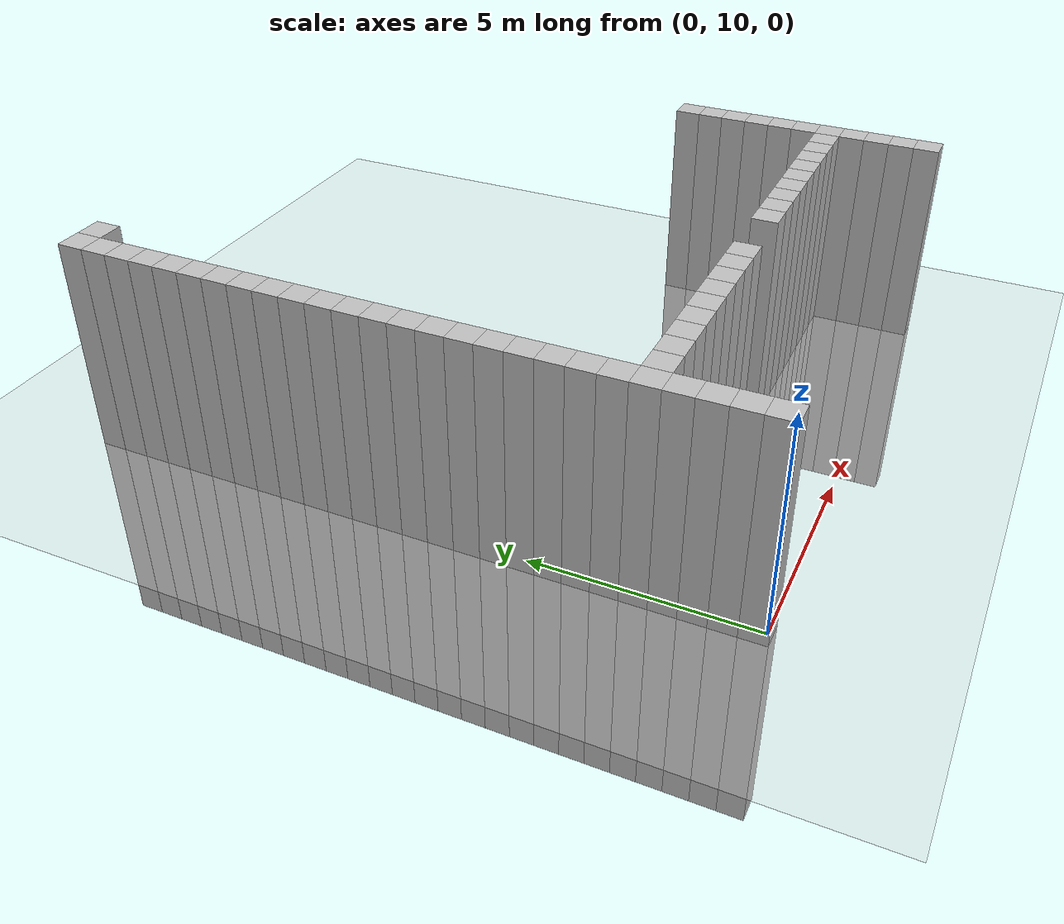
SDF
<sdf version="1.6">
 <world name="default">
  <model name="ground_plane">
   <static>1</static>
   <link name="link">
    <collision name="collision">
     <geometry><plane><normal>0 0 1</normal><size>100 100</size></plane></geometry>
     <surface><friction><ode><mu>100</mu><mu2>50</mu2></ode></friction></surface>
    </collision>
    <visual name="visual">
     <cast_shadows>0</cast_shadows>
     <geometry><plane><normal>0 0 1</normal><size>100 100</size></plane></geometry>
     <material>
      <script><uri>file://media/materials/scripts/gazebo.material</uri><name>Gazebo/Grey</name></script>
     </material>
    </visual>
   </link>
  </model>
  <model name="unit_cylinder_17">
   <static>1</static>
   <pose>0 10.2 0 0 -0 0</pose>
   <link name="link">
    <inertial>
     <mass>1</mass>
     <inertia><ixx>0.145833</ixx><ixy>0</ixy><ixz>0</ixz><iyy>0.145833</iyy><iyz>0</iyz><izz>0.125</izz></inertia>
    </inertial>
    <collision name="collision"><geometry><box><size>0.6 0.6 10</size></box></geometry></collision>
    <visual name="visual">
     <geometry><box><size>0.6 0.6 10</size></box></geometry>
     <material><ambient>0.753 0.753 0.753 1</ambient><diffuse>0.753 0.753 0.753 1</diffuse></material>
     <material>
      <script><name>Gazebo/Grey</name><uri>file://media/materials/scripts/gazebo.material</uri></script>
     </material>
    </visual>
   </link>
  </model>
  <model name="unit_cylinder_18">
   <static>1</static>
   <pose>0 10.8 0 0 -0 0</pose>
   <link name="link">
    <inertial>
     <mass>1</mass>
     <inertia><ixx>0.145833</ixx><ixy>0</ixy><ixz>0</ixz><iyy>0.145833</iyy><iyz>0</iyz><izz>0.125</izz></inertia>
    </inertial>
    <collision name="collision"><geometry><box><size>0.6 0.6 10</size></box></geometry></collision>
    <visual name="visual">
     <geometry><box><size>0.6 0.6 10</size></box></geometry>
     <material><ambient>0.753 0.753 0.753 1</ambient><diffuse>0.753 0.753 0.753 1</diffuse></material>
     <material>
      <script><name>Gazebo/Grey</name><uri>file://media/materials/scripts/gazebo.material</uri></script>
     </material>
    </visual>
   </link>
  </model>
  <model name="unit_cylinder_19">
   <static>1</static>
   <pose>0 11.4 0 0 -0 0</pose>
   <link name="link">
    <inertial>
     <mass>1</mass>
     <inertia><ixx>0.145833</ixx><ixy>0</ixy><ixz>0</ixz><iyy>0.145833</iyy><iyz>0</iyz><izz>0.125</izz></inertia>
    </inertial>
    <collision name="collision"><geometry><box><size>0.6 0.6 10</size></box></geometry></collision>
    <visual name="visual">
     <geometry><box><size>0.6 0.6 10</size></box></geometry>
     <material><ambient>0.753 0.753 0.753 1</ambient><diffuse>0.753 0.753 0.753 1</diffuse></material>
     <material>
      <script><name>Gazebo/Grey</name><uri>file://media/materials/scripts/gazebo.material</uri></script>
     </material>
    </visual>
   </link>
  </model>
  <model name="unit_cylinder_20">
   <static>1</static>
   <pose>0 12 0 0 -0 0</pose>
   <link name="link">
    <inertial>
     <mass>1</mass>
     <inertia><ixx>0.145833</ixx><ixy>0</ixy><ixz>0</ixz><iyy>0.145833</iyy><iyz>0</iyz><izz>0.125</izz></inertia>
    </inertial>
    <collision name="collision"><geometry><box><size>0.6 0.6 10</size></box></geometry></collision>
    <visual name="visual">
     <geometry><box><size>0.6 0.6 10</size></box></geometry>
     <material><ambient>0.753 0.753 0.753 1</ambient><diffuse>0.753 0.753 0.753 1</diffuse></material>
     <material>
      <script><name>Gazebo/Grey</name><uri>file://media/materials/scripts/gazebo.material</uri></script>
     </material>
    </visual>
   </link>
  </model>
  <model name="unit_cylinder_21">
   <static>1</static>
   <pose>0 12.6 0 0 -0 0</pose>
   <link name="link">
    <inertial>
     <mass>1</mass>
     <inertia><ixx>0.145833</ixx><ixy>0</ixy><ixz>0</ixz><iyy>0.145833</iyy><iyz>0</iyz><izz>0.125</izz></inertia>
    </inertial>
    <collision name="collision"><geometry><box><size>0.6 0.6 10</size></box></geometry></collision>
    <visual name="visual">
     <geometry><box><size>0.6 0.6 10</size></box></geometry>
     <material><ambient>0.753 0.753 0.753 1</ambient><diffuse>0.753 0.753 0.753 1</diffuse></material>
     <material>
      <script><name>Gazebo/Grey</name><uri>file://media/materials/scripts/gazebo.material</uri></script>
     </material>
    </visual>
   </link>
  </model>
  <model name="unit_cylinder_22">
   <static>1</static>
   <pose>0 13.2 0 0 -0 0</pose>
   <link name="link">
    <inertial>
     <mass>1</mass>
     <inertia><ixx>0.145833</ixx><ixy>0</ixy><ixz>0</ixz><iyy>0.145833</iyy><iyz>0</iyz><izz>0.125</izz></inertia>
    </inertial>
    <collision name="collision"><geometry><box><size>0.6 0.6 10</size></box></geometry></collision>
    <visual name="visual">
     <geometry><box><size>0.6 0.6 10</size></box></geometry>
     <material><ambient>0.753 0.753 0.753 1</ambient><diffuse>0.753 0.753 0.753 1</diffuse></material>
     <material>
      <script><name>Gazebo/Grey</name><uri>file://media/materials/scripts/gazebo.material</uri></script>
     </material>
    </visual>
   </link>
  </model>
  <model name="unit_cylinder_23">
   <static>1</static>
   <pose>0 13.8 0 0 -0 0</pose>
   <link name="link">
    <inertial>
     <mass>1</mass>
     <inertia><ixx>0.145833</ixx><ixy>0</ixy><ixz>0</ixz><iyy>0.145833</iyy><iyz>0</iyz><izz>0.125</izz></inertia>
    </inertial>
    <collision name="collision"><geometry><box><size>0.6 0.6 10</size></box></geometry></collision>
    <visual name="visual">
     <geometry><box><size>0.6 0.6 10</size></box></geometry>
     <material><ambient>0.753 0.753 0.753 1</ambient><diffuse>0.753 0.753 0.753 1</diffuse></material>
     <material>
      <script><name>Gazebo/Grey</name><uri>file://media/materials/scripts/gazebo.material</uri></script>
     </material>
    </visual>
   </link>
  </model>
  <model name="unit_cylinder_24">
   <static>1</static>
   <pose>0 14.4 0 0 -0 0</pose>
   <link name="link">
    <inertial>
     <mass>1</mass>
     <inertia><ixx>0.145833</ixx><ixy>0</ixy><ixz>0</ixz><iyy>0.145833</iyy><iyz>0</iyz><izz>0.125</izz></inertia>
    </inertial>
    <collision name="collision"><geometry><box><size>0.6 0.6 10</size></box></geometry></collision>
    <visual name="visual">
     <geometry><box><size>0.6 0.6 10</size></box></geometry>
     <material><ambient>0.753 0.753 0.753 1</ambient><diffuse>0.753 0.753 0.753 1</diffuse></material>
     <material>
      <script><name>Gazebo/Grey</name><uri>file://media/materials/scripts/gazebo.material</uri></script>
     </material>
    </visual>
   </link>
  </model>
  <model name="unit_cylinder_25">
   <static>1</static>
   <pose>0 15 0 0 -0 0</pose>
   <link name="link">
    <inertial>
     <mass>1</mass>
     <inertia><ixx>0.145833</ixx><ixy>0</ixy><ixz>0</ixz><iyy>0.145833</iyy><iyz>0</iyz><izz>0.125</izz></inertia>
    </inertial>
    <collision name="collision"><geometry><box><size>0.6 0.6 10</size></box></geometry></collision>
    <visual name="visual">
     <geometry><box><size>0.6 0.6 10</size></box></geometry>
     <material><ambient>0.753 0.753 0.753 1</ambient><diffuse>0.753 0.753 0.753 1</diffuse></material>
     <material>
      <script><name>Gazebo/Grey</name><uri>file://media/materials/scripts/gazebo.material</uri></script>
     </material>
    </visual>
   </link>
  </model>
  <model name="unit_cylinder_26">
   <static>1</static>
   <pose>0 15.6 0 0 -0 0</pose>
   <link name="link">
    <inertial>
     <mass>1</mass>
     <inertia><ixx>0.145833</ixx><ixy>0</ixy><ixz>0</ixz><iyy>0.145833</iyy><iyz>0</iyz><izz>0.125</izz></inertia>
    </inertial>
    <collision name="collision"><geometry><box><size>0.6 0.6 10</size></box></geometry></collision>
    <visual name="visual">
     <geometry><box><size>0.6 0.6 10</size></box></geometry>
     <material><ambient>0.753 0.753 0.753 1</ambient><diffuse>0.753 0.753 0.753 1</diffuse></material>
     <material>
      <script><name>Gazebo/Grey</name><uri>file://media/materials/scripts/gazebo.material</uri></script>
     </material>
    </visual>
   </link>
  </model>
  <model name="unit_cylinder_27">
   <static>1</static>
   <pose>0 16.2 0 0 -0 0</pose>
   <link name="link">
    <inertial>
     <mass>1</mass>
     <inertia><ixx>0.145833</ixx><ixy>0</ixy><ixz>0</ixz><iyy>0.145833</iyy><iyz>0</iyz><izz>0.125</izz></inertia>
    </inertial>
    <collision name="collision"><geometry><box><size>0.6 0.6 10</size></box></geometry></collision>
    <visual name="visual">
     <geometry><box><size>0.6 0.6 10</size></box></geometry>
     <material><ambient>0.753 0.753 0.753 1</ambient><diffuse>0.753 0.753 0.753 1</diffuse></material>
     <material>
      <script><name>Gazebo/Grey</name><uri>file://media/materials/scripts/gazebo.material</uri></script>
     </material>
    </visual>
   </link>
  </model>
  <model name="unit_cylinder_28">
   <static>1</static>
   <pose>0 16.8 0 0 -0 0</pose>
   <link name="link">
    <inertial>
     <mass>1</mass>
     <inertia><ixx>0.145833</ixx><ixy>0</ixy><ixz>0</ixz><iyy>0.145833</iyy><iyz>0</iyz><izz>0.125</izz></inertia>
    </inertial>
    <collision name="collision"><geometry><box><size>0.6 0.6 10</size></box></geometry></collision>
    <visual name="visual">
     <geometry><box><size>0.6 0.6 10</size></box></geometry>
     <material><ambient>0.753 0.753 0.753 1</ambient><diffuse>0.753 0.753 0.753 1</diffuse></material>
     <material>
      <script><name>Gazebo/Grey</name><uri>file://media/materials/scripts/gazebo.material</uri></script>
     </material>
    </visual>
   </link>
  </model>
  <model name="unit_cylinder_29">
   <static>1</static>
   <pose>0 17.4 0 0 -0 0</pose>
   <link name="link">
    <inertial>
     <mass>1</mass>
     <inertia><ixx>0.145833</ixx><ixy>0</ixy><ixz>0</ixz><iyy>0.145833</iyy><iyz>0</iyz><izz>0.125</izz></inertia>
    </inertial>
    <collision name="collision"><geometry><box><size>0.6 0.6 10</size></box></geometry></collision>
    <visual name="visual">
     <geometry><box><size>0.6 0.6 10</size></box></geometry>
     <material><ambient>0.753 0.753 0.753 1</ambient><diffuse>0.753 0.753 0.753 1</diffuse></material>
     <material>
      <script><name>Gazebo/Grey</name><uri>file://media/materials/scripts/gazebo.material</uri></script>
     </material>
    </visual>
   </link>
  </model>
  <model name="unit_cylinder_30">
   <static>1</static>
   <pose>0 18 0 0 -0 0</pose>
   <link name="link">
    <inertial>
     <mass>1</mass>
     <inertia><ixx>0.145833</ixx><ixy>0</ixy><ixz>0</ixz><iyy>0.145833</iyy><iyz>0</iyz><izz>0.125</izz></inertia>
    </inertial>
    <collision name="collision"><geometry><box><size>0.6 0.6 10</size></box></geometry></collision>
    <visual name="visual">
     <geometry><box><size>0.6 0.6 10</size></box></geometry>
     <material><ambient>0.753 0.753 0.753 1</ambient><diffuse>0.753 0.753 0.753 1</diffuse></material>
     <material>
      <script><name>Gazebo/Grey</name><uri>file://media/materials/scripts/gazebo.material</uri></script>
     </material>
    </visual>
   </link>
  </model>
  <model name="unit_cylinder_31">
   <static>1</static>
   <pose>0 18.6 0 0 -0 0</pose>
   <link name="link">
    <inertial>
     <mass>1</mass>
     <inertia><ixx>0.145833</ixx><ixy>0</ixy><ixz>0</ixz><iyy>0.145833</iyy><iyz>0</iyz><izz>0.125</izz></inertia>
    </inertial>
    <collision name="collision"><geometry><box><size>0.6 0.6 10</size></box></geometry></collision>
    <visual name="visual">
     <geometry><box><size>0.6 0.6 10</size></box></geometry>
     <material><ambient>0.753 0.753 0.753 1</ambient><diffuse>0.753 0.753 0.753 1</diffuse></material>
     <material>
      <script><name>Gazebo/Grey</name><uri>file://media/materials/scripts/gazebo.material</uri></script>
     </material>
    </visual>
   </link>
  </model>
  <model name="unit_cylinder_32">
   <static>1</static>
   <pose>0 19.2 0 0 -0 0</pose>
   <link name="link">
    <inertial>
     <mass>1</mass>
     <inertia><ixx>0.145833</ixx><ixy>0</ixy><ixz>0</ixz><iyy>0.145833</iyy><iyz>0</iyz><izz>0.125</izz></inertia>
    </inertial>
    <collision name="collision"><geometry><box><size>0.6 0.6 10</size></box></geometry></collision>
    <visual name="visual">
     <geometry><box><size>0.6 0.6 10</size></box></geometry>
     <material><ambient>0.753 0.753 0.753 1</ambient><diffuse>0.753 0.753 0.753 1</diffuse></material>
     <material>
      <script><name>Gazebo/Grey</name><uri>file://media/materials/scripts/gazebo.material</uri></script>
     </material>
    </visual>
   </link>
  </model>
  <model name="unit_cylinder_33">
   <static>1</static>
   <pose>0 19.8 0 0 -0 0</pose>
   <link name="link">
    <inertial>
     <mass>1</mass>
     <inertia><ixx>0.145833</ixx><ixy>0</ixy><ixz>0</ixz><iyy>0.145833</iyy><iyz>0</iyz><izz>0.125</izz></inertia>
    </inertial>
    <collision name="collision"><geometry><box><size>0.6 0.6 10</size></box></geometry></collision>
    <visual name="visual">
     <geometry><box><size>0.6 0.6 10</size></box></geometry>
     <material><ambient>0.753 0.753 0.753 1</ambient><diffuse>0.753 0.753 0.753 1</diffuse></material>
     <material>
      <script><name>Gazebo/Grey</name><uri>file://media/materials/scripts/gazebo.material</uri></script>
     </material>
    </visual>
   </link>
  </model>
  <model name="unit_cylinder_34">
   <static>1</static>
   <pose>0 20.4 0 0 -0 0</pose>
   <link name="link">
    <inertial>
     <mass>1</mass>
     <inertia><ixx>0.145833</ixx><ixy>0</ixy><ixz>0</ixz><iyy>0.145833</iyy><iyz>0</iyz><izz>0.125</izz></inertia>
    </inertial>
    <collision name="collision"><geometry><box><size>0.6 0.6 10</size></box></geometry></collision>
    <visual name="visual">
     <geometry><box><size>0.6 0.6 10</size></box></geometry>
     <material><ambient>0.753 0.753 0.753 1</ambient><diffuse>0.753 0.753 0.753 1</diffuse></material>
     <material>
      <script><name>Gazebo/Grey</name><uri>file://media/materials/scripts/gazebo.material</uri></script>
     </material>
    </visual>
   </link>
  </model>
  <model name="unit_cylinder_35">
   <static>1</static>
   <pose>0 21 0 0 -0 0</pose>
   <link name="link">
    <inertial>
     <mass>1</mass>
     <inertia><ixx>0.145833</ixx><ixy>0</ixy><ixz>0</ixz><iyy>0.145833</iyy><iyz>0</iyz><izz>0.125</izz></inertia>
    </inertial>
    <collision name="collision"><geometry><box><size>0.6 0.6 10</size></box></geometry></collision>
    <visual name="visual">
     <geometry><box><size>0.6 0.6 10</size></box></geometry>
     <material><ambient>0.753 0.753 0.753 1</ambient><diffuse>0.753 0.753 0.753 1</diffuse></material>
     <material>
      <script><name>Gazebo/Grey</name><uri>file://media/materials/scripts/gazebo.material</uri></script>
     </material>
    </visual>
   </link>
  </model>
  <model name="unit_cylinder_36">
   <static>1</static>
   <pose>0 21.6 0 0 -0 0</pose>
   <link name="link">
    <inertial>
     <mass>1</mass>
     <inertia><ixx>0.145833</ixx><ixy>0</ixy><ixz>0</ixz><iyy>0.145833</iyy><iyz>0</iyz><izz>0.125</izz></inertia>
    </inertial>
    <collision name="collision"><geometry><box><size>0.6 0.6 10</size></box></geometry></collision>
    <visual name="visual">
     <geometry><box><size>0.6 0.6 10</size></box></geometry>
     <material><ambient>0.753 0.753 0.753 1</ambient><diffuse>0.753 0.753 0.753 1</diffuse></material>
     <material>
      <script><name>Gazebo/Grey</name><uri>file://media/materials/scripts/gazebo.material</uri></script>
     </material>
    </visual>
   </link>
  </model>
  <model name="unit_cylinder_37">
   <static>1</static>
   <pose>0 22.2 0 0 -0 0</pose>
   <link name="link">
    <inertial>
     <mass>1</mass>
     <inertia><ixx>0.145833</ixx><ixy>0</ixy><ixz>0</ixz><iyy>0.145833</iyy><iyz>0</iyz><izz>0.125</izz></inertia>
    </inertial>
    <collision name="collision"><geometry><box><size>0.6 0.6 10</size></box></geometry></collision>
    <visual name="visual">
     <geometry><box><size>0.6 0.6 10</size></box></geometry>
     <material><ambient>0.753 0.753 0.753 1</ambient><diffuse>0.753 0.753 0.753 1</diffuse></material>
     <material>
      <script><name>Gazebo/Grey</name><uri>file://media/materials/scripts/gazebo.material</uri></script>
     </material>
    </visual>
   </link>
  </model>
  <model name="unit_cylinder_38">
   <static>1</static>
   <pose>0 22.8 0 0 -0 0</pose>
   <link name="link">
    <inertial>
     <mass>1</mass>
     <inertia><ixx>0.145833</ixx><ixy>0</ixy><ixz>0</ixz><iyy>0.145833</iyy><iyz>0</iyz><izz>0.125</izz></inertia>
    </inertial>
    <collision name="collision"><geometry><box><size>0.6 0.6 10</size></box></geometry></collision>
    <visual name="visual">
     <geometry><box><size>0.6 0.6 10</size></box></geometry>
     <material><ambient>0.753 0.753 0.753 1</ambient><diffuse>0.753 0.753 0.753 1</diffuse></material>
     <material>
      <script><name>Gazebo/Grey</name><uri>file://media/materials/scripts/gazebo.material</uri></script>
     </material>
    </visual>
   </link>
  </model>
  <model name="unit_cylinder_39">
   <static>1</static>
   <pose>0 23.4 0 0 -0 0</pose>
   <link name="link">
    <inertial>
     <mass>1</mass>
     <inertia><ixx>0.145833</ixx><ixy>0</ixy><ixz>0</ixz><iyy>0.145833</iyy><iyz>0</iyz><izz>0.125</izz></inertia>
    </inertial>
    <collision name="collision"><geometry><box><size>0.6 0.6 10</size></box></geometry></collision>
    <visual name="visual">
     <geometry><box><size>0.6 0.6 10</size></box></geometry>
     <material><ambient>0.753 0.753 0.753 1</ambient><diffuse>0.753 0.753 0.753 1</diffuse></material>
     <material>
      <script><name>Gazebo/Grey</name><uri>file://media/materials/scripts/gazebo.material</uri></script>
     </material>
    </visual>
   </link>
  </model>
  <model name="unit_cylinder_40">
   <static>1</static>
   <pose>0 24 0 0 -0 0</pose>
   <link name="link">
    <inertial>
     <mass>1</mass>
     <inertia><ixx>0.145833</ixx><ixy>0</ixy><ixz>0</ixz><iyy>0.145833</iyy><iyz>0</iyz><izz>0.125</izz></inertia>
    </inertial>
    <collision name="collision"><geometry><box><size>0.6 0.6 10</size></box></geometry></collision>
    <visual name="visual">
     <geometry><box><size>0.6 0.6 10</size></box></geometry>
     <material><ambient>0.753 0.753 0.753 1</ambient><diffuse>0.753 0.753 0.753 1</diffuse></material>
     <material>
      <script><name>Gazebo/Grey</name><uri>file://media/materials/scripts/gazebo.material</uri></script>
     </material>
    </visual>
   </link>
  </model>
  <model name="unit_cylinder_41">
   <static>1</static>
   <pose>0 24.6 0 0 -0 0</pose>
   <link name="link">
    <inertial>
     <mass>1</mass>
     <inertia><ixx>0.145833</ixx><ixy>0</ixy><ixz>0</ixz><iyy>0.145833</iyy><iyz>0</iyz><izz>0.125</izz></inertia>
    </inertial>
    <collision name="collision"><geometry><box><size>0.6 0.6 10</size></box></geometry></collision>
    <visual name="visual">
     <geometry><box><size>0.6 0.6 10</size></box></geometry>
     <material><ambient>0.753 0.753 0.753 1</ambient><diffuse>0.753 0.753 0.753 1</diffuse></material>
     <material>
      <script><name>Gazebo/Grey</name><uri>file://media/materials/scripts/gazebo.material</uri></script>
     </material>
    </visual>
   </link>
  </model>
  <model name="unit_cylinder_42">
   <static>1</static>
   <pose>0 25.2 0 0 -0 0</pose>
   <link name="link">
    <inertial>
     <mass>1</mass>
     <inertia><ixx>0.145833</ixx><ixy>0</ixy><ixz>0</ixz><iyy>0.145833</iyy><iyz>0</iyz><izz>0.125</izz></inertia>
    </inertial>
    <collision name="collision"><geometry><box><size>0.6 0.6 10</size></box></geometry></collision>
    <visual name="visual">
     <geometry><box><size>0.6 0.6 10</size></box></geometry>
     <material><ambient>0.753 0.753 0.753 1</ambient><diffuse>0.753 0.753 0.753 1</diffuse></material>
     <material>
      <script><name>Gazebo/Grey</name><uri>file://media/materials/scripts/gazebo.material</uri></script>
     </material>
    </visual>
   </link>
  </model>
  <model name="unit_cylinder_44">
   <static>1</static>
   <pose>0.6 12.6 0 0 -0 0</pose>
   <link name="link">
    <inertial>
     <mass>1</mass>
     <inertia><ixx>0.145833</ixx><ixy>0</ixy><ixz>0</ixz><iyy>0.145833</iyy><iyz>0</iyz><izz>0.125</izz></inertia>
    </inertial>
    <collision name="collision"><geometry><box><size>0.6 0.6 10</size></box></geometry></collision>
    <visual name="visual">
     <geometry><box><size>0.6 0.6 10</size></box></geometry>
     <material><ambient>0.753 0.753 0.753 1</ambient><diffuse>0.753 0.753 0.753 1</diffuse></material>
     <material>
      <script><name>Gazebo/Grey</name><uri>file://media/materials/scripts/gazebo.material</uri></script>
     </material>
    </visual>
   </link>
  </model>
  <model name="unit_cylinder_45">
   <static>1</static>
   <pose>0.6 25.2 0 0 -0 0</pose>
   <link name="link">
    <inertial>
     <mass>1</mass>
     <inertia><ixx>0.145833</ixx><ixy>0</ixy><ixz>0</ixz><iyy>0.145833</iyy><iyz>0</iyz><izz>0.125</izz></inertia>
    </inertial>
    <collision name="collision"><geometry><box><size>0.6 0.6 10</size></box></geometry></collision>
    <visual name="visual">
     <geometry><box><size>0.6 0.6 10</size></box></geometry>
     <material><ambient>0.753 0.753 0.753 1</ambient><diffuse>0.753 0.753 0.753 1</diffuse></material>
     <material>
      <script><name>Gazebo/Grey</name><uri>file://media/materials/scripts/gazebo.material</uri></script>
     </material>
    </visual>
   </link>
  </model>
  <model name="unit_cylinder_47">
   <static>1</static>
   <pose>1.2 12.6 0 0 -0 0</pose>
   <link name="link">
    <inertial>
     <mass>1</mass>
     <inertia><ixx>0.145833</ixx><ixy>0</ixy><ixz>0</ixz><iyy>0.145833</iyy><iyz>0</iyz><izz>0.125</izz></inertia>
    </inertial>
    <collision name="collision"><geometry><box><size>0.6 0.6 10</size></box></geometry></collision>
    <visual name="visual">
     <geometry><box><size>0.6 0.6 10</size></box></geometry>
     <material><ambient>0.753 0.753 0.753 1</ambient><diffuse>0.753 0.753 0.753 1</diffuse></material>
     <material>
      <script><name>Gazebo/Grey</name><uri>file://media/materials/scripts/gazebo.material</uri></script>
     </material>
    </visual>
   </link>
  </model>
  <model name="unit_cylinder_50">
   <static>1</static>
   <pose>1.8 12.6 0 0 -0 0</pose>
   <link name="link">
    <inertial>
     <mass>1</mass>
     <inertia><ixx>0.145833</ixx><ixy>0</ixy><ixz>0</ixz><iyy>0.145833</iyy><iyz>0</iyz><izz>0.125</izz></inertia>
    </inertial>
    <collision name="collision"><geometry><box><size>0.6 0.6 10</size></box></geometry></collision>
    <visual name="visual">
     <geometry><box><size>0.6 0.6 10</size></box></geometry>
     <material><ambient>0.753 0.753 0.753 1</ambient><diffuse>0.753 0.753 0.753 1</diffuse></material>
     <material>
      <script><name>Gazebo/Grey</name><uri>file://media/materials/scripts/gazebo.material</uri></script>
     </material>
    </visual>
   </link>
  </model>
  <model name="unit_cylinder_53">
   <static>1</static>
   <pose>2.4 12.6 0 0 -0 0</pose>
   <link name="link">
    <inertial>
     <mass>1</mass>
     <inertia><ixx>0.145833</ixx><ixy>0</ixy><ixz>0</ixz><iyy>0.145833</iyy><iyz>0</iyz><izz>0.125</izz></inertia>
    </inertial>
    <collision name="collision"><geometry><box><size>0.6 0.6 10</size></box></geometry></collision>
    <visual name="visual">
     <geometry><box><size>0.6 0.6 10</size></box></geometry>
     <material><ambient>0.753 0.753 0.753 1</ambient><diffuse>0.753 0.753 0.753 1</diffuse></material>
     <material>
      <script><name>Gazebo/Grey</name><uri>file://media/materials/scripts/gazebo.material</uri></script>
     </material>
    </visual>
   </link>
  </model>
  <model name="unit_cylinder_56">
   <static>1</static>
   <pose>3 12.6 0 0 -0 0</pose>
   <link name="link">
    <inertial>
     <mass>1</mass>
     <inertia><ixx>0.145833</ixx><ixy>0</ixy><ixz>0</ixz><iyy>0.145833</iyy><iyz>0</iyz><izz>0.125</izz></inertia>
    </inertial>
    <collision name="collision"><geometry><box><size>0.6 0.6 10</size></box></geometry></collision>
    <visual name="visual">
     <geometry><box><size>0.6 0.6 10</size></box></geometry>
     <material><ambient>0.753 0.753 0.753 1</ambient><diffuse>0.753 0.753 0.753 1</diffuse></material>
     <material>
      <script><name>Gazebo/Grey</name><uri>file://media/materials/scripts/gazebo.material</uri></script>
     </material>
    </visual>
   </link>
  </model>
  <model name="unit_cylinder_59">
   <static>1</static>
   <pose>3.6 12.6 0 0 -0 0</pose>
   <link name="link">
    <inertial>
     <mass>1</mass>
     <inertia><ixx>0.145833</ixx><ixy>0</ixy><ixz>0</ixz><iyy>0.145833</iyy><iyz>0</iyz><izz>0.125</izz></inertia>
    </inertial>
    <collision name="collision"><geometry><box><size>0.6 0.6 10</size></box></geometry></collision>
    <visual name="visual">
     <geometry><box><size>0.6 0.6 10</size></box></geometry>
     <material><ambient>0.753 0.753 0.753 1</ambient><diffuse>0.753 0.753 0.753 1</diffuse></material>
     <material>
      <script><name>Gazebo/Grey</name><uri>file://media/materials/scripts/gazebo.material</uri></script>
     </material>
    </visual>
   </link>
  </model>
  <model name="unit_cylinder_62">
   <static>1</static>
   <pose>4.2 12.6 0 0 -0 0</pose>
   <link name="link">
    <inertial>
     <mass>1</mass>
     <inertia><ixx>0.145833</ixx><ixy>0</ixy><ixz>0</ixz><iyy>0.145833</iyy><iyz>0</iyz><izz>0.125</izz></inertia>
    </inertial>
    <collision name="collision"><geometry><box><size>0.6 0.6 10</size></box></geometry></collision>
    <visual name="visual">
     <geometry><box><size>0.6 0.6 10</size></box></geometry>
     <material><ambient>0.753 0.753 0.753 1</ambient><diffuse>0.753 0.753 0.753 1</diffuse></material>
     <material>
      <script><name>Gazebo/Grey</name><uri>file://media/materials/scripts/gazebo.material</uri></script>
     </material>
    </visual>
   </link>
  </model>
  <model name="unit_cylinder_65">
   <static>1</static>
   <pose>4.8 12.6 0 0 -0 0</pose>
   <link name="link">
    <inertial>
     <mass>1</mass>
     <inertia><ixx>0.145833</ixx><ixy>0</ixy><ixz>0</ixz><iyy>0.145833</iyy><iyz>0</iyz><izz>0.125</izz></inertia>
    </inertial>
    <collision name="collision"><geometry><box><size>0.6 0.6 10</size></box></geometry></collision>
    <visual name="visual">
     <geometry><box><size>0.6 0.6 10</size></box></geometry>
     <material><ambient>0.753 0.753 0.753 1</ambient><diffuse>0.753 0.753 0.753 1</diffuse></material>
     <material>
      <script><name>Gazebo/Grey</name><uri>file://media/materials/scripts/gazebo.material</uri></script>
     </material>
    </visual>
   </link>
  </model>
  <model name="unit_cylinder_68">
   <static>1</static>
   <pose>5.4 12.6 0 0 -0 0</pose>
   <link name="link">
    <inertial>
     <mass>1</mass>
     <inertia><ixx>0.145833</ixx><ixy>0</ixy><ixz>0</ixz><iyy>0.145833</iyy><iyz>0</iyz><izz>0.125</izz></inertia>
    </inertial>
    <collision name="collision"><geometry><box><size>0.6 0.6 10</size></box></geometry></collision>
    <visual name="visual">
     <geometry><box><size>0.6 0.6 10</size></box></geometry>
     <material><ambient>0.753 0.753 0.753 1</ambient><diffuse>0.753 0.753 0.753 1</diffuse></material>
     <material>
      <script><name>Gazebo/Grey</name><uri>file://media/materials/scripts/gazebo.material</uri></script>
     </material>
    </visual>
   </link>
  </model>
  <model name="unit_cylinder_77">
   <static>1</static>
   <pose>7.2 12.6 0 0 -0 0</pose>
   <link name="link">
    <inertial>
     <mass>1</mass>
     <inertia><ixx>0.145833</ixx><ixy>0</ixy><ixz>0</ixz><iyy>0.145833</iyy><iyz>0</iyz><izz>0.125</izz></inertia>
    </inertial>
    <collision name="collision"><geometry><box><size>0.6 0.6 10</size></box></geometry></collision>
    <visual name="visual">
     <geometry><box><size>0.6 0.6 10</size></box></geometry>
     <material><ambient>0.753 0.753 0.753 1</ambient><diffuse>0.753 0.753 0.753 1</diffuse></material>
     <material>
      <script><name>Gazebo/Grey</name><uri>file://media/materials/scripts/gazebo.material</uri></script>
     </material>
    </visual>
   </link>
  </model>
  <model name="unit_cylinder_80">
   <static>1</static>
   <pose>7.8 12.6 0 0 -0 0</pose>
   <link name="link">
    <inertial>
     <mass>1</mass>
     <inertia><ixx>0.145833</ixx><ixy>0</ixy><ixz>0</ixz><iyy>0.145833</iyy><iyz>0</iyz><izz>0.125</izz></inertia>
    </inertial>
    <collision name="collision"><geometry><box><size>0.6 0.6 10</size></box></geometry></collision>
    <visual name="visual">
     <geometry><box><size>0.6 0.6 10</size></box></geometry>
     <material><ambient>0.753 0.753 0.753 1</ambient><diffuse>0.753 0.753 0.753 1</diffuse></material>
     <material>
      <script><name>Gazebo/Grey</name><uri>file://media/materials/scripts/gazebo.material</uri></script>
     </material>
    </visual>
   </link>
  </model>
  <model name="unit_cylinder_83">
   <static>1</static>
   <pose>8.4 12.6 0 0 -0 0</pose>
   <link name="link">
    <inertial>
     <mass>1</mass>
     <inertia><ixx>0.145833</ixx><ixy>0</ixy><ixz>0</ixz><iyy>0.145833</iyy><iyz>0</iyz><izz>0.125</izz></inertia>
    </inertial>
    <collision name="collision"><geometry><box><size>0.6 0.6 10</size></box></geometry></collision>
    <visual name="visual">
     <geometry><box><size>0.6 0.6 10</size></box></geometry>
     <material><ambient>0.753 0.753 0.753 1</ambient><diffuse>0.753 0.753 0.753 1</diffuse></material>
     <material>
      <script><name>Gazebo/Grey</name><uri>file://media/materials/scripts/gazebo.material</uri></script>
     </material>
    </visual>
   </link>
  </model>
  <model name="unit_cylinder_86">
   <static>1</static>
   <pose>9 12.6 0 0 -0 0</pose>
   <link name="link">
    <inertial>
     <mass>1</mass>
     <inertia><ixx>0.145833</ixx><ixy>0</ixy><ixz>0</ixz><iyy>0.145833</iyy><iyz>0</iyz><izz>0.125</izz></inertia>
    </inertial>
    <collision name="collision"><geometry><box><size>0.6 0.6 10</size></box></geometry></collision>
    <visual name="visual">
     <geometry><box><size>0.6 0.6 10</size></box></geometry>
     <material><ambient>0.753 0.753 0.753 1</ambient><diffuse>0.753 0.753 0.753 1</diffuse></material>
     <material>
      <script><name>Gazebo/Grey</name><uri>file://media/materials/scripts/gazebo.material</uri></script>
     </material>
    </visual>
   </link>
  </model>
  <model name="unit_cylinder_89">
   <static>1</static>
   <pose>9.6 12.6 0 0 -0 0</pose>
   <link name="link">
    <inertial>
     <mass>1</mass>
     <inertia><ixx>0.145833</ixx><ixy>0</ixy><ixz>0</ixz><iyy>0.145833</iyy><iyz>0</iyz><izz>0.125</izz></inertia>
    </inertial>
    <collision name="collision"><geometry><box><size>0.6 0.6 10</size></box></geometry></collision>
    <visual name="visual">
     <geometry><box><size>0.6 0.6 10</size></box></geometry>
     <material><ambient>0.753 0.753 0.753 1</ambient><diffuse>0.753 0.753 0.753 1</diffuse></material>
     <material>
      <script><name>Gazebo/Grey</name><uri>file://media/materials/scripts/gazebo.material</uri></script>
     </material>
    </visual>
   </link>
  </model>
  <model name="unit_cylinder_92">
   <static>1</static>
   <pose>10.2 12.6 0 0 -0 0</pose>
   <link name="link">
    <inertial>
     <mass>1</mass>
     <inertia><ixx>0.145833</ixx><ixy>0</ixy><ixz>0</ixz><iyy>0.145833</iyy><iyz>0</iyz><izz>0.125</izz></inertia>
    </inertial>
    <collision name="collision"><geometry><box><size>0.6 0.6 10</size></box></geometry></collision>
    <visual name="visual">
     <geometry><box><size>0.6 0.6 10</size></box></geometry>
     <material><ambient>0.753 0.753 0.753 1</ambient><diffuse>0.753 0.753 0.753 1</diffuse></material>
     <material>
      <script><name>Gazebo/Grey</name><uri>file://media/materials/scripts/gazebo.material</uri></script>
     </material>
    </visual>
   </link>
  </model>
  <model name="unit_cylinder_95">
   <static>1</static>
   <pose>10.8 12.6 0 0 -0 0</pose>
   <link name="link">
    <inertial>
     <mass>1</mass>
     <inertia><ixx>0.145833</ixx><ixy>0</ixy><ixz>0</ixz><iyy>0.145833</iyy><iyz>0</iyz><izz>0.125</izz></inertia>
    </inertial>
    <collision name="collision"><geometry><box><size>0.6 0.6 10</size></box></geometry></collision>
    <visual name="visual">
     <geometry><box><size>0.6 0.6 10</size></box></geometry>
     <material><ambient>0.753 0.753 0.753 1</ambient><diffuse>0.753 0.753 0.753 1</diffuse></material>
     <material>
      <script><name>Gazebo/Grey</name><uri>file://media/materials/scripts/gazebo.material</uri></script>
     </material>
    </visual>
   </link>
  </model>
  <model name="unit_cylinder_98">
   <static>1</static>
   <pose>11.4 12.6 0 0 -0 0</pose>
   <link name="link">
    <inertial>
     <mass>1</mass>
     <inertia><ixx>0.145833</ixx><ixy>0</ixy><ixz>0</ixz><iyy>0.145833</iyy><iyz>0</iyz><izz>0.125</izz></inertia>
    </inertial>
    <collision name="collision"><geometry><box><size>0.6 0.6 10</size></box></geometry></collision>
    <visual name="visual">
     <geometry><box><size>0.6 0.6 10</size></box></geometry>
     <material><ambient>0.753 0.753 0.753 1</ambient><diffuse>0.753 0.753 0.753 1</diffuse></material>
     <material>
      <script><name>Gazebo/Grey</name><uri>file://media/materials/scripts/gazebo.material</uri></script>
     </material>
    </visual>
   </link>
  </model>
  <model name="unit_cylinder_101">
   <static>1</static>
   <pose>12 12.6 0 0 -0 0</pose>
   <link name="link">
    <inertial>
     <mass>1</mass>
     <inertia><ixx>0.145833</ixx><ixy>0</ixy><ixz>0</ixz><iyy>0.145833</iyy><iyz>0</iyz><izz>0.125</izz></inertia>
    </inertial>
    <collision name="collision"><geometry><box><size>0.6 0.6 10</size></box></geometry></collision>
    <visual name="visual">
     <geometry><box><size>0.6 0.6 10</size></box></geometry>
     <material><ambient>0.753 0.753 0.753 1</ambient><diffuse>0.753 0.753 0.753 1</diffuse></material>
     <material>
      <script><name>Gazebo/Grey</name><uri>file://media/materials/scripts/gazebo.material</uri></script>
     </material>
    </visual>
   </link>
  </model>
  <model name="unit_cylinder_120">
   <static>1</static>
   <pose>12.6 10.2 0 0 -0 0</pose>
   <link name="link">
    <inertial>
     <mass>1</mass>
     <inertia><ixx>0.145833</ixx><ixy>0</ixy><ixz>0</ixz><iyy>0.145833</iyy><iyz>0</iyz><izz>0.125</izz></inertia>
    </inertial>
    <collision name="collision"><geometry><box><size>0.6 0.6 10</size></box></geometry></collision>
    <visual name="visual">
     <geometry><box><size>0.6 0.6 10</size></box></geometry>
     <material><ambient>0.753 0.753 0.753 1</ambient><diffuse>0.753 0.753 0.753 1</diffuse></material>
     <material>
      <script><name>Gazebo/Grey</name><uri>file://media/materials/scripts/gazebo.material</uri></script>
     </material>
    </visual>
   </link>
  </model>
  <model name="unit_cylinder_121">
   <static>1</static>
   <pose>12.6 10.8 0 0 -0 0</pose>
   <link name="link">
    <inertial>
     <mass>1</mass>
     <inertia><ixx>0.145833</ixx><ixy>0</ixy><ixz>0</ixz><iyy>0.145833</iyy><iyz>0</iyz><izz>0.125</izz></inertia>
    </inertial>
    <collision name="collision"><geometry><box><size>0.6 0.6 10</size></box></geometry></collision>
    <visual name="visual">
     <geometry><box><size>0.6 0.6 10</size></box></geometry>
     <material><ambient>0.753 0.753 0.753 1</ambient><diffuse>0.753 0.753 0.753 1</diffuse></material>
     <material>
      <script><name>Gazebo/Grey</name><uri>file://media/materials/scripts/gazebo.material</uri></script>
     </material>
    </visual>
   </link>
  </model>
  <model name="unit_cylinder_122">
   <static>1</static>
   <pose>12.6 11.4 0 0 -0 0</pose>
   <link name="link">
    <inertial>
     <mass>1</mass>
     <inertia><ixx>0.145833</ixx><ixy>0</ixy><ixz>0</ixz><iyy>0.145833</iyy><iyz>0</iyz><izz>0.125</izz></inertia>
    </inertial>
    <collision name="collision"><geometry><box><size>0.6 0.6 10</size></box></geometry></collision>
    <visual name="visual">
     <geometry><box><size>0.6 0.6 10</size></box></geometry>
     <material><ambient>0.753 0.753 0.753 1</ambient><diffuse>0.753 0.753 0.753 1</diffuse></material>
     <material>
      <script><name>Gazebo/Grey</name><uri>file://media/materials/scripts/gazebo.material</uri></script>
     </material>
    </visual>
   </link>
  </model>
  <model name="unit_cylinder_123">
   <static>1</static>
   <pose>12.6 12 0 0 -0 0</pose>
   <link name="link">
    <inertial>
     <mass>1</mass>
     <inertia><ixx>0.145833</ixx><ixy>0</ixy><ixz>0</ixz><iyy>0.145833</iyy><iyz>0</iyz><izz>0.125</izz></inertia>
    </inertial>
    <collision name="collision"><geometry><box><size>0.6 0.6 10</size></box></geometry></collision>
    <visual name="visual">
     <geometry><box><size>0.6 0.6 10</size></box></geometry>
     <material><ambient>0.753 0.753 0.753 1</ambient><diffuse>0.753 0.753 0.753 1</diffuse></material>
     <material>
      <script><name>Gazebo/Grey</name><uri>file://media/materials/scripts/gazebo.material</uri></script>
     </material>
    </visual>
   </link>
  </model>
  <model name="unit_cylinder_124">
   <static>1</static>
   <pose>12.6 12.6 0 0 -0 0</pose>
   <link name="link">
    <inertial>
     <mass>1</mass>
     <inertia><ixx>0.145833</ixx><ixy>0</ixy><ixz>0</ixz><iyy>0.145833</iyy><iyz>0</iyz><izz>0.125</izz></inertia>
    </inertial>
    <collision name="collision"><geometry><box><size>0.6 0.6 10</size></box></geometry></collision>
    <visual name="visual">
     <geometry><box><size>0.6 0.6 10</size></box></geometry>
     <material><ambient>0.753 0.753 0.753 1</ambient><diffuse>0.753 0.753 0.753 1</diffuse></material>
     <material>
      <script><name>Gazebo/Grey</name><uri>file://media/materials/scripts/gazebo.material</uri></script>
     </material>
    </visual>
   </link>
  </model>
  <model name="unit_cylinder_125">
   <static>1</static>
   <pose>12.6 13.2 0 0 -0 0</pose>
   <link name="link">
    <inertial>
     <mass>1</mass>
     <inertia><ixx>0.145833</ixx><ixy>0</ixy><ixz>0</ixz><iyy>0.145833</iyy><iyz>0</iyz><izz>0.125</izz></inertia>
    </inertial>
    <collision name="collision"><geometry><box><size>0.6 0.6 10</size></box></geometry></collision>
    <visual name="visual">
     <geometry><box><size>0.6 0.6 10</size></box></geometry>
     <material><ambient>0.753 0.753 0.753 1</ambient><diffuse>0.753 0.753 0.753 1</diffuse></material>
     <material>
      <script><name>Gazebo/Grey</name><uri>file://media/materials/scripts/gazebo.material</uri></script>
     </material>
    </visual>
   </link>
  </model>
  <model name="unit_cylinder_126">
   <static>1</static>
   <pose>12.6 13.8 0 0 -0 0</pose>
   <link name="link">
    <inertial>
     <mass>1</mass>
     <inertia><ixx>0.145833</ixx><ixy>0</ixy><ixz>0</ixz><iyy>0.145833</iyy><iyz>0</iyz><izz>0.125</izz></inertia>
    </inertial>
    <collision name="collision"><geometry><box><size>0.6 0.6 10</size></box></geometry></collision>
    <visual name="visual">
     <geometry><box><size>0.6 0.6 10</size></box></geometry>
     <material><ambient>0.753 0.753 0.753 1</ambient><diffuse>0.753 0.753 0.753 1</diffuse></material>
     <material>
      <script><name>Gazebo/Grey</name><uri>file://media/materials/scripts/gazebo.material</uri></script>
     </material>
    </visual>
   </link>
  </model>
  <model name="unit_cylinder_127">
   <static>1</static>
   <pose>12.6 14.4 0 0 -0 0</pose>
   <link name="link">
    <inertial>
     <mass>1</mass>
     <inertia><ixx>0.145833</ixx><ixy>0</ixy><ixz>0</ixz><iyy>0.145833</iyy><iyz>0</iyz><izz>0.125</izz></inertia>
    </inertial>
    <collision name="collision"><geometry><box><size>0.6 0.6 10</size></box></geometry></collision>
    <visual name="visual">
     <geometry><box><size>0.6 0.6 10</size></box></geometry>
     <material><ambient>0.753 0.753 0.753 1</ambient><diffuse>0.753 0.753 0.753 1</diffuse></material>
     <material>
      <script><name>Gazebo/Grey</name><uri>file://media/materials/scripts/gazebo.material</uri></script>
     </material>
    </visual>
   </link>
  </model>
  <model name="unit_cylinder_128">
   <static>1</static>
   <pose>12.6 15 0 0 -0 0</pose>
   <link name="link">
    <inertial>
     <mass>1</mass>
     <inertia><ixx>0.145833</ixx><ixy>0</ixy><ixz>0</ixz><iyy>0.145833</iyy><iyz>0</iyz><izz>0.125</izz></inertia>
    </inertial>
    <collision name="collision"><geometry><box><size>0.6 0.6 10</size></box></geometry></collision>
    <visual name="visual">
     <geometry><box><size>0.6 0.6 10</size></box></geometry>
     <material><ambient>0.753 0.753 0.753 1</ambient><diffuse>0.753 0.753 0.753 1</diffuse></material>
     <material>
      <script><name>Gazebo/Grey</name><uri>file://media/materials/scripts/gazebo.material</uri></script>
     </material>
    </visual>
   </link>
  </model>
  <model name="unit_cylinder_129">
   <static>1</static>
   <pose>12.6 15.6 0 0 -0 0</pose>
   <link name="link">
    <inertial>
     <mass>1</mass>
     <inertia><ixx>0.145833</ixx><ixy>0</ixy><ixz>0</ixz><iyy>0.145833</iyy><iyz>0</iyz><izz>0.125</izz></inertia>
    </inertial>
    <collision name="collision"><geometry><box><size>0.6 0.6 10</size></box></geometry></collision>
    <visual name="visual">
     <geometry><box><size>0.6 0.6 10</size></box></geometry>
     <material><ambient>0.753 0.753 0.753 1</ambient><diffuse>0.753 0.753 0.753 1</diffuse></material>
     <material>
      <script><name>Gazebo/Grey</name><uri>file://media/materials/scripts/gazebo.material</uri></script>
     </material>
    </visual>
   </link>
  </model>
  <model name="unit_cylinder_130">
   <static>1</static>
   <pose>12.6 16.2 0 0 -0 0</pose>
   <link name="link">
    <inertial>
     <mass>1</mass>
     <inertia><ixx>0.145833</ixx><ixy>0</ixy><ixz>0</ixz><iyy>0.145833</iyy><iyz>0</iyz><izz>0.125</izz></inertia>
    </inertial>
    <collision name="collision"><geometry><box><size>0.6 0.6 10</size></box></geometry></collision>
    <visual name="visual">
     <geometry><box><size>0.6 0.6 10</size></box></geometry>
     <material><ambient>0.753 0.753 0.753 1</ambient><diffuse>0.753 0.753 0.753 1</diffuse></material>
     <material>
      <script><name>Gazebo/Grey</name><uri>file://media/materials/scripts/gazebo.material</uri></script>
     </material>
    </visual>
   </link>
  </model>
  <model name="hinge_door_1">
   <link name="link_0">
    <inertial>
     <mass>0.11</mass>
     <inertia>
      <ixx>0.0366896</ixx>
      <ixy>0</ixy>
      <ixz>0</ixz>
      <iyy>0.0477583</iyy>
      <iyz>0</iyz>
      <izz>0.0111146</izz>
     </inertia>
    </inertial>
    <pose>0.25 0 1 0 -0 0</pose>
    <visual name="visual">
     <geometry><box><size>1.1 0.05 2</size></box></geometry>
     <material>
      <lighting>1</lighting>
      <script><uri>file://media/materials/scripts/gazebo.material</uri><name>Gazebo/Grey</name></script>
      <shader type="pixel"><normal_map>__default__</normal_map></shader>
      <ambient>0.204 0.396 0.643 1</ambient>
      <diffuse>0.7 0.7 0.7 1</diffuse>
      <specular>0.01 0.01 0.01 1</specular>
      <emissive>0 0 0 1</emissive>
     </material>
    </visual>
    <collision name="collision">
     <geometry><box><size>1.1 0.05 2</size></box></geometry>
     <surface>
      <friction>
       <ode><mu>1</mu><mu2>1</mu2><fdir1>0 0 0</fdir1><slip1>0</slip1><slip2>0</slip2></ode>
       <torsional>
        <coefficient>1</coefficient>
        <patch_radius>0</patch_radius>
        <surface_radius>0</surface_radius>
        <use_patch_radius>1</use_patch_radius>
        <ode><slip>0</slip></ode>
       </torsional>
      </friction>
      <bounce><restitution_coefficient>0</restitution_coefficient><threshold>1e+06</threshold></bounce>
      <contact>
       <collide_without_contact>0</collide_without_contact>
       <collide_without_contact_bitmask>1</collide_without_contact_bitmask>
       <collide_bitmask>1</collide_bitmask>
       <ode>
        <soft_cfm>0</soft_cfm>
        <soft_erp>0.2</soft_erp>
        <kp>1e+13</kp>
        <kd>1</kd>
        <max_vel>0.01</max_vel>
        <min_depth>0</min_depth>
       </ode>
       <bullet>
        <split_impulse>1</split_impulse>
        <split_impulse_penetration_threshold>-0.01</split_impulse_penetration_threshold>
        <soft_cfm>0</soft_cfm>
        <soft_erp>0.2</soft_erp>
        <kp>1e+13</kp>
        <kd>1</kd>
       </bullet>
      </contact>
     </surface>
    </collision>
   </link>
   <link name="link_1">
    <inertial>
     <mass>10.9956</mass>
     <inertia>
      <ixx>3.67206</ixx>
      <ixy>0</ixy>
      <ixz>0</ixz>
      <iyy>3.67206</iyy>
      <iyz>0</iyz>
      <izz>0.0137445</izz>
     </inertia>
    </inertial>
    <pose>-0.25 0 1 0 -0 0</pose>
    <visual name="visual">
     <geometry><cylinder><radius>0.05</radius><length>2</length></cylinder></geometry>
     <material>
      <lighting>1</lighting>
      <script><uri>file://media/materials/scripts/gazebo.material</uri><name>Gazebo/Grey</name></script>
      <shader type="pixel"><normal_map>__default__</normal_map></shader>
      <ambient>0.204 0.396 0.643 1</ambient>
      <diffuse>0.7 0.7 0.7 1</diffuse>
      <specular>0.01 0.01 0.01 1</specular>
      <emissive>0 0 0 1</emissive>
     </material>
    </visual>
    <collision name="collision">
     <geometry><cylinder><radius>0.05</radius><length>2</length></cylinder></geometry>
     <surface>
      <friction>
       <ode><mu>1</mu><mu2>1</mu2><fdir1>0 0 0</fdir1><slip1>0</slip1><slip2>0</slip2></ode>
       <torsional>
        <coefficient>1</coefficient>
        <patch_radius>0</patch_radius>
        <surface_radius>0</surface_radius>
        <use_patch_radius>1</use_patch_radius>
        <ode><slip>0</slip></ode>
       </torsional>
      </friction>
      <bounce><restitution_coefficient>0</restitution_coefficient><threshold>1e+06</threshold></bounce>
      <contact>
       <collide_without_contact>0</collide_without_contact>
       <collide_without_contact_bitmask>1</collide_without_contact_bitmask>
       <collide_bitmask>1</collide_bitmask>
       <ode>
        <soft_cfm>0</soft_cfm>
        <soft_erp>0.2</soft_erp>
        <kp>1e+13</kp>
        <kd>1</kd>
        <max_vel>0.01</max_vel>
        <min_depth>0</min_depth>
       </ode>
       <bullet>
        <split_impulse>1</split_impulse>
        <split_impulse_penetration_threshold>-0.01</split_impulse_penetration_threshold>
        <soft_cfm>0</soft_cfm>
        <soft_erp>0.2</soft_erp>
        <kp>1e+13</kp>
        <kd>1</kd>
       </bullet>
      </contact>
     </surface>
    </collision>
   </link>
   <joint name="hinge" type="revolute">
    <parent>link_1</parent>
    <child>link_0</child>
    <pose>-0.5 0 0 0 -0 0</pose>
    <axis>
     <xyz>0 0 1</xyz>
     <use_parent_model_frame>0</use_parent_model_frame>
     <limit>
      <lower>-1.79769e+308</lower>
      <upper>1.79769e+308</upper>
      <effort>-1</effort>
      <velocity>-1</velocity>
     </limit>
     <dynamics>
      <spring_reference>0</spring_reference>
      <spring_stiffness>0</spring_stiffness>
      <damping>0</damping>
      <friction>0</friction>
     </dynamics>
    </axis>
    <physics>
     <ode><limit><cfm>0</cfm><erp>0.2</erp></limit><suspension><cfm>0</cfm><erp>0.2</erp></suspension></ode>
    </physics>
   </joint>
   <joint name="floor_link" type="fixed">
    <child>link_1</child>
    <parent>world</parent>
    <axis>
     <xyz>0 0 1</xyz>
     <dynamics><spring_reference>0</spring_reference><spring_stiffness>0</spring_stiffness></dynamics>
     <use_parent_model_frame>0</use_parent_model_frame>
     <limit><lower>-1e+16</lower><upper>1e+16</upper></limit>
    </axis>
   </joint>
   <pose>6.00711 12.6038 0 0 -0 0.000402</pose>
  </model>
 </world>
</sdf>
